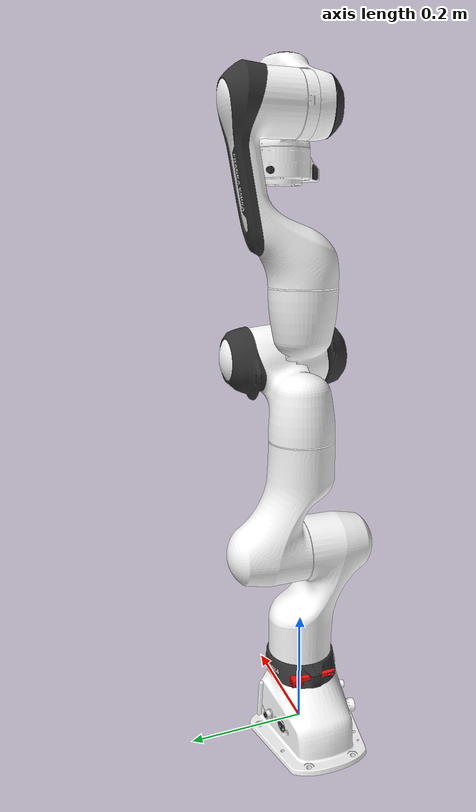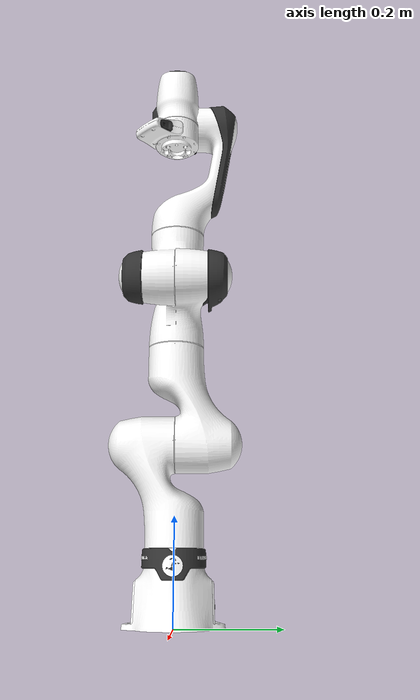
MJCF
<mujoco model="fr3">
  <compiler angle="radian" meshdir="" texturedir="" />

  <option integrator="implicitfast"/>

  <default>
    <default class="fr3">
      <joint armature="0.1" damping="1"/>
      <position inheritrange="1"/>
      <default class="visual">
        <geom type="mesh" group="2" contype="0" conaffinity="0"/>
      </default>
      <default class="collision">
        <geom type="mesh" group="3" mass="0" density="0"/>
      </default>
      <site size="0.001" rgba="0.5 0.5 0.5 0.3" group="4"/>
    </default>
  </default>

  <asset>
    <material name="black" rgba=".2 .2 .2 1"/>
    <material name="white" rgba="1 1 1 1"/>
    <material name="red" rgba="1 0.072272 0.039546 1"/>
    <material name="gray" rgba="0.863156 0.863156 0.863157 1"/>
    <material name="button_green" rgba="0.102241 0.571125 0.102242 1"/>
    <material name="button_red" rgba="0.520996 0.008023 0.013702 1"/>
    <material name="button_blue" rgba="0.024157 0.445201 0.737911 1"/>

    <mesh name="link0_0" file="robots/franka_fr3/assets/link0_0.obj"/>
    <mesh name="link0_1" file="robots/franka_fr3/assets/link0_1.obj"/>
    <mesh name="link0_2" file="robots/franka_fr3/assets/link0_2.obj"/>
    <mesh name="link0_3" file="robots/franka_fr3/assets/link0_3.obj"/>
    <mesh name="link0_4" file="robots/franka_fr3/assets/link0_4.obj"/>
    <mesh name="link0_5" file="robots/franka_fr3/assets/link0_5.obj"/>
    <mesh name="link0_6" file="robots/franka_fr3/assets/link0_6.obj"/>
    <mesh name="link1" file="robots/franka_fr3/assets/link1.obj"/>
    <mesh name="link2" file="robots/franka_fr3/assets/link2.obj"/>
    <mesh name="link3_0" file="robots/franka_fr3/assets/link3_0.obj"/>
    <mesh name="link3_1" file="robots/franka_fr3/assets/link3_1.obj"/>
    <mesh name="link4_0" file="robots/franka_fr3/assets/link4_0.obj"/>
    <mesh name="link4_1" file="robots/franka_fr3/assets/link4_1.obj"/>
    <mesh name="link5_0" file="robots/franka_fr3/assets/link5_0.obj"/>
    <mesh name="link5_1" file="robots/franka_fr3/assets/link5_1.obj"/>
    <mesh name="link5_2" file="robots/franka_fr3/assets/link5_2.obj"/>
    <mesh name="link6_0" file="robots/franka_fr3/assets/link6_0.obj"/>
    <mesh name="link6_1" file="robots/franka_fr3/assets/link6_1.obj"/>
    <mesh name="link6_2" file="robots/franka_fr3/assets/link6_2.obj"/>
    <mesh name="link6_3" file="robots/franka_fr3/assets/link6_3.obj"/>
    <mesh name="link6_4" file="robots/franka_fr3/assets/link6_4.obj"/>
    <mesh name="link6_5" file="robots/franka_fr3/assets/link6_5.obj"/>
    <mesh name="link6_6" file="robots/franka_fr3/assets/link6_6.obj"/>
    <mesh name="link6_7" file="robots/franka_fr3/assets/link6_7.obj"/>
    <mesh name="link7_0" file="robots/franka_fr3/assets/link7_0.obj"/>
    <mesh name="link7_1" file="robots/franka_fr3/assets/link7_1.obj"/>
    <mesh name="link7_2" file="robots/franka_fr3/assets/link7_2.obj"/>
    <mesh name="link7_3" file="robots/franka_fr3/assets/link7_3.obj"/>

    <mesh name="link0_coll" file="robots/franka_fr3/assets/link0.stl"/>
    <mesh name="link1_coll" file="assets/link1.stl"/>
    <mesh name="link2_coll" file="assets/link2.stl"/>
    <mesh name="link3_coll" file="assets/link3.stl"/>
    <mesh name="link4_coll" file="assets/link4.stl"/>
    <mesh name="link5_coll" file="assets/link5.stl"/>
    <mesh name="link6_coll" file="assets/link6.stl"/>
    <mesh name="link7_coll" file="assets/link7.stl"/>
  </asset>

  <worldbody>
    <body name="base" childclass="fr3">
      <body name="fr3_link0">
        <geom mesh="link0_0" material="black" class="visual"/>
        <geom mesh="link0_1" material="white" class="visual"/>
        <geom mesh="link0_2" material="white" class="visual"/>
        <geom mesh="link0_3" material="white" class="visual"/>
        <geom mesh="link0_4" material="white" class="visual"/>
        <geom mesh="link0_5" material="red" class="visual"/>
        <geom mesh="link0_6" material="black" class="visual"/>
        <geom name="fr3_link0_collision" mesh="link0_coll" class="collision"/>
        <body name="fr3_link1" pos="0 0 0.333">
          <inertial pos="4.128e-07 -0.0181251 -0.0386036" quat="0.999901 0.0021545 0.00429041 0.0132325" mass="2.92747"
            diaginertia="0.0186043 0.0181194 0.00538716"/>
          <joint name="fr3_joint1" axis="0 0 1" range="-2.7437 2.7437" actuatorfrcrange="-87 87"/>
          <geom name="fr3_link1_collision" class="collision" mesh="link1_coll"/>
          <geom material="white" mesh="link1" class="visual"/>
          <body name="fr3_link2" quat="1 -1 0 0">
            <inertial pos="0.00318289 -0.0743222 0.00881461" quat="0.356855 0.680818 -0.434812 0.469126" mass="2.93554"
              diaginertia="0.0299291 0.0299291 0.0299291"/>
            <joint name="fr3_joint2" axis="0 0 1" range="-1.7837 1.7837" actuatorfrcrange="-87 87"/>
            <geom material="white" mesh="link2" class="visual"/>
            <geom name="fr3_link2_collision" class="collision" mesh="link2_coll"/>
            <body name="fr3_link3" pos="0 -0.316 0" quat="1 1 0 0">
              <inertial pos="0.0407016 -0.00482006 -0.0289731" quat="0.950032 -0.148357 0.229935 0.150201" mass="2.2449"
                diaginertia="0.0140109 0.0140109 0.0140109"/>
              <joint name="fr3_joint3" axis="0 0 1" range="-2.9007 2.9007" actuatorfrcrange="-87 87"/>
              <geom mesh="link3_0" material="white" class="visual"/>
              <geom mesh="link3_1" material="black" class="visual"/>
              <geom name="fr3_link3_collision" class="collision" mesh="link3_coll"/>
              <body name="fr3_link4" pos="0.0825 0 0" quat="1 1 0 0">
                <inertial pos="-0.0459101 0.0630493 -0.00851879" quat="0.23761 0.892458 -0.00078702 0.383484"
                  mass="2.6156" diaginertia="0.0206104 0.0206104 0.0206104"/>
                <joint name="fr3_joint4" axis="0 0 1" range="-3.0421 -0.1518" actuatorfrcrange="-87 87"/>
                <geom mesh="link4_0" material="white" class="visual"/>
                <geom mesh="link4_1" material="black" class="visual"/>
                <geom name="fr3_link4_collision" class="collision" mesh="link4_coll"/>
                <body name="fr3_link5" pos="-0.0825 0.384 0" quat="1 -1 0 0">
                  <inertial pos="-0.00160396 0.0292536 -0.0972966" quat="0.922285 0.098826 0.0982562 -0.360514"
                    mass="2.32712" diaginertia="0.0182879 0.0182879 0.0182879"/>
                  <joint name="fr3_joint5" axis="0 0 1" range="-2.8065 2.8065" actuatorfrcrange="-12 12"/>
                  <geom mesh="link5_0" material="white" class="visual"/>
                  <geom mesh="link5_1" material="white" class="visual"/>
                  <geom mesh="link5_2" material="black" class="visual"/>
                  <geom name="fr3_link5_collision" class="collision" mesh="link5_coll"/>
                  <body name="fr3_link6" quat="1 1 0 0">
                    <inertial pos="0.0597131 -0.0410295 -0.0101693" quat="0.593933 0.525442 0.520644 0.316361"
                      mass="1.81704" diaginertia="0.00483538 0.00483538 0.00483538"/>
                    <joint name="fr3_joint6" axis="0 0 1" range="0.5445 4.5169" actuatorfrcrange="-12 12"/>
                    <geom mesh="link6_0" material="button_green" class="visual"/>
                    <geom mesh="link6_1" material="white" class="visual"/>
                    <geom mesh="link6_2" material="white" class="visual"/>
                    <geom mesh="link6_3" material="gray" class="visual"/>
                    <geom mesh="link6_4" material="button_red" class="visual"/>
                    <geom mesh="link6_5" material="white" class="visual"/>
                    <geom mesh="link6_6" material="black" class="visual"/>
                    <geom mesh="link6_7" material="button_blue" class="visual"/>
                    <geom name="fr3_link6_collision" class="collision" mesh="link6_coll"/>
                    <body name="fr3_link7" pos="0.088 0 0" quat="1 1 0 0">
                      <inertial pos="0.00452258 0.00862619 -0.0161633" quat="0.120255 0.394761 -0.799132 0.437139"
                        mass="0.627143" diaginertia="3.076e-07 3.076e-07 3.076e-07"/>
                      <joint name="fr3_joint7" axis="0 0 1" range="-3.0159 3.0159" actuatorfrcrange="-12 12"/>
                      <geom mesh="link7_0" material="black" class="visual"/>
                      <geom mesh="link7_1" material="white" class="visual"/>
                      <geom mesh="link7_2" material="white" class="visual"/>
                      <geom mesh="link7_3" material="black" class="visual"/>
                      <geom name="fr3_link7_collision" class="collision" mesh="link7_coll"/>
                      <site name="attachment_site" pos="0 0 0.107"/>
                    </body>
                  </body>
                </body>
              </body>
            </body>
          </body>
        </body>
      </body>
    </body>
  </worldbody>

  <actuator>
    <position class="fr3" name="fr3_joint1" joint="fr3_joint1" kp="4500" kv="450"/>
    <position class="fr3" name="fr3_joint2" joint="fr3_joint2" kp="4500" kv="450"/>
    <position class="fr3" name="fr3_joint3" joint="fr3_joint3" kp="3500" kv="350"/>
    <position class="fr3" name="fr3_joint4" joint="fr3_joint4" kp="3500" kv="350"/>
    <position class="fr3" name="fr3_joint5" joint="fr3_joint5" kp="2000" kv="200"/>
    <position class="fr3" name="fr3_joint6" joint="fr3_joint6" kp="2000" kv="200"/>
    <position class="fr3" name="fr3_joint7" joint="fr3_joint7" kp="2000" kv="200"/>
  </actuator>

  <keyframe>
    <key name="home" qpos="0 0 0 -1.57079 0 1.57079 -0.7853" ctrl="0 0 0 -1.57079 0 1.57079 -0.7853"/>
  </keyframe>
</mujoco>
